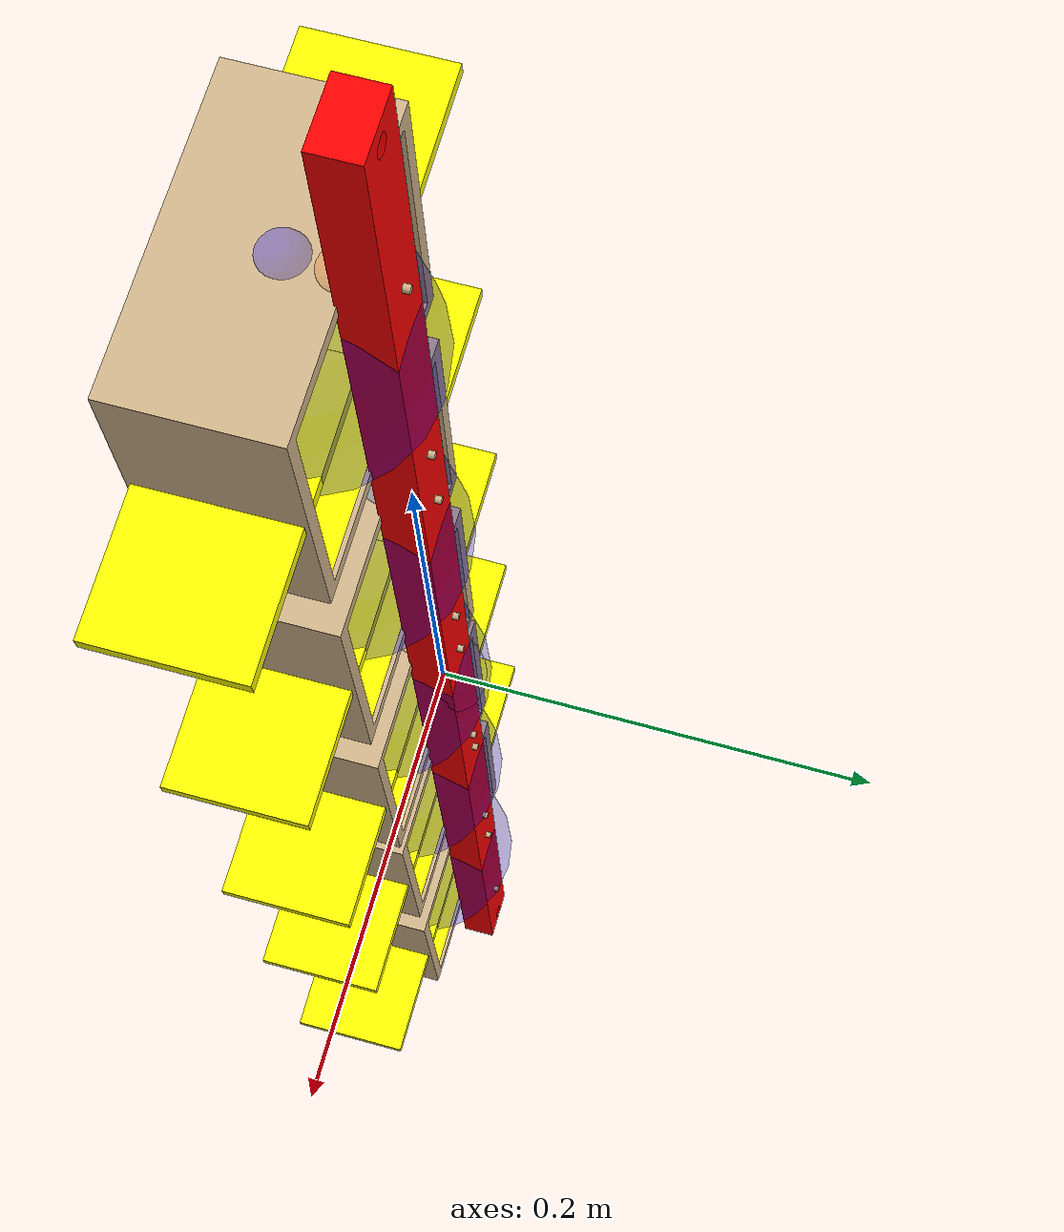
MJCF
<mujoco model="shelf_ivar_0678">
  <custom>
    <numeric data="-0.000755 0.072044 0.009075 0.5 -0.5 0.5 -0.5" name="0_part0_initpos" />
    <numeric data="-0.254231 -0.080677 0.06297 1.0 -0.0 0.0 0.0" name="1_part1_initpos" />
    <numeric data="-0.10745 0.201858 0.063073 -6e-06 0.0 -0.0 -1.0" name="2_part2_initpos" />
    <numeric data="0.045981 -0.080604 0.06297 1.0 -0.0 0.0 -6e-06" name="3_part3_initpos" />
    <numeric data="0.197653 0.207511 0.06297 1e-06 0.0 0.0 -1.0" name="4_part4_initpos" />
    <numeric data="0.348056 -0.070529 0.06297 1.0 -0.0 -0.0 7e-06" name="5_part5_initpos" />
  </custom>
  <asset>
    <mesh file="shelf_ivar_0678/box.stl" name="box_mesh" scale="0.0005 0.0005 0.0005" />
    <mesh file="shelf_ivar_0678/column.stl" name="column_mesh" scale="0.0005 0.0005 0.0005" />
    <texture file="../textures/light-wood.png" name="tex-light-wood" type="2d" />
    <material name="light-wood" reflectance="0.5" texrepeat="20 20" texture="tex-light-wood" texuniform="true" />
  </asset>
  <equality>
    <weld active="false" body1="0_part0" body2="1_part1" solimp="1 1 0.5" solref="0.01 0.3" />
    <weld active="false" body1="0_part0" body2="2_part2" solimp="1 1 0.5" solref="0.01 0.3" />
    <weld active="false" body1="0_part0" body2="3_part3" solimp="1 1 0.5" solref="0.01 0.3" />
    <weld active="false" body1="0_part0" body2="4_part4" solimp="1 1 0.5" solref="0.01 0.3" />
    <weld active="false" body1="0_part0" body2="5_part5" solimp="1 1 0.5" solref="0.01 0.3" />
  </equality>
  <worldbody>
    <body name="0_part0" pos="0 0 0" quat="1 0 0 0">
      <geom conaffinity="0" contype="0" density="1" mesh="column_mesh" name="0_part0_mesh" pos="0 0 0" rgba="0.82 0.71 0.55 1" type="mesh" />
      <geom density="100" name="noviz_collision_0_part0" pos="0 0 0" rgba="1 0 0 1" size="0.0135 0.009 0.45" solref="0.001 1" type="box" />
      <site name="0_part0_bottom_site" pos="0 0 -0.44" rgba="1 0 0 0.3" size="0.01" />
      <site name="0_part0_top_site" pos="0.0 0.0 0.44" rgba="1 0 0 0.3" size="0.01" />
      <site name="0_part0_horizontal_radius_site" pos="0 0 0" rgba="0 0 1 0.3" size="0.02" />
      <site name="col-box1,0,conn_site" pos="0 -0.01 -0.26" quat="0.707 0 0.707 0" rgba="0.9019 0.0980 0.2941 0.3" size="0.01" />
      <site name="col-box2,0,conn_site" pos="0 -0.01 -0.10" quat="0.707 0 0.707 0" rgba="0.2352 0.7058 0.2941 0.3" size="0.01" />
      <site name="col-box3,0,conn_site" pos="0 -0.01 0.04" quat="0.707 0 0.707 0" rgba="1.0 0.8823 0.0980 0.3" size="0.01" />
      <site name="col-box4,0,conn_site" pos="0 -0.01 0.20" quat="0.707 0 0.707 0" rgba="0.2627 0.3882 0.8470 0.3" size="0.01" />
      <site name="col-box5,0,conn_site" pos="0 -0.01 0.36" quat="0.707 0 0.707 0" rgba="0.9607 0.5098 0.1921 0.3" size="0.01" />
    </body>
    <body name="1_part1" pos="0 -0.03 -0.32" quat="1 0 0 0">
      <geom conaffinity="0" contype="0" density="1" material="light-wood" mesh="box_mesh" name="1_part1_mesh" pos="0 0 0" rgba="0.82 0.71 0.55 1" type="mesh" />
      <geom density="100" name="noviz_collision_1_part1_top" pos="0 -0.01 0.06" rgba="1 0 0 1" size="0.06 0.03 0.003" solref="0.001 1" type="box" />
      <geom density="100" name="noviz_collision_1_part1_bot" pos="0 -0.01 -0.06" rgba="1 1 0 1" size="0.06 0.03 0.003" solref="0.001 1" type="box" />
      <geom density="100" euler="0 1.56  0" name="noviz_collision_1_part1_side1" pos="-0.06 -0.01 0" rgba="1 1 0 1" size="0.06 0.03 0.003" solref="0.001 1" type="box" />
      <geom density="100" euler="0 1.56  0" name="noviz_collision_1_part1_side2" pos="0.06 -0.01 0" rgba="1 1 0 1" size="0.06 0.03 0.003" solref="0.001 1" type="box" />
      <site name="box1-col,0,conn_site" pos="0.0 0.025 0.06" quat="0.707 0 0.707 0" rgba="0.9019 0.0980 0.2941 0.3" size="0.01" />
      <site name="1_part1_bottom_site" pos="0 0 -0.06" rgba="0 0 1 0.3" size="0.01" />
      <site name="1_part1_top_site" pos="0.0 0.0 0.06" rgba="0 0 1 0.3" size="0.01" />
      <site name="1_part1_horizontal_radius_site" pos="0 0 0" rgba="0 0 1 0.3" size="0.05" />
    </body>
    <body name="2_part2" pos="0 -0.03 -0.16" quat="1 0 0 0">
      <geom conaffinity="0" contype="0" density="1" material="light-wood" mesh="box_mesh" name="2_part2_mesh" pos="0 0 0" rgba="0.82 0.71 0.55 1" type="mesh" />
      <geom density="100" name="noviz_collision_2_part2_top" pos="0 -0.01 0.06" rgba="1 0 0 1" size="0.06 0.03 0.003" solref="0.001 1" type="box" />
      <geom density="100" name="noviz_collision_2_part2_bot" pos="0 -0.01 -0.06" rgba="1 1 0 1" size="0.06 0.03 0.003" solref="0.001 1" type="box" />
      <geom density="100" euler="0 1.56  0" name="noviz_collision_2_part2_side1" pos="-0.06 -0.01 0" rgba="1 1 0 1" size="0.06 0.03 0.003" solref="0.001 1" type="box" />
      <geom density="100" euler="0 1.56  0" name="noviz_collision_2_part2_side2" pos="0.06 -0.01 0" rgba="1 1 0 1" size="0.06 0.03 0.003" solref="0.001 1" type="box" />
      <site name="box2-col,0,conn_site" pos="0.0 0.025 0.06" quat="0.707 0 0.707 0" rgba="0.2352 0.7058 0.2941 0.3" size="0.01" />
      <site name="2_part2_bottom_site" pos="0 0 -0.06" rgba="0 0 1 0.3" size="0.01" />
      <site name="2_part2_top_site" pos="0.0 0.0 0.06" rgba="0 0 1 0.3" size="0.01" />
      <site name="2_part2_horizontal_radius_site" pos="0 0 0" rgba="0 0 1 0.3" size="0.05" />
    </body>
    <body name="3_part3" pos="0 -0.03 -0.02" quat="1 0 0 0">
      <geom conaffinity="0" contype="0" density="1" material="light-wood" mesh="box_mesh" name="3_part3_mesh" pos="0 0 0" rgba="0.82 0.71 0.55 1" type="mesh" />
      <geom density="100" name="noviz_collision_3_part3_top" pos="0 -0.01 0.06" rgba="1 0 0 1" size="0.06 0.03 0.003" solref="0.001 1" type="box" />
      <geom density="100" name="noviz_collision_3_part3_bot" pos="0 -0.01 -0.06" rgba="1 1 0 1" size="0.06 0.03 0.003" solref="0.001 1" type="box" />
      <geom density="100" euler="0 1.56  0" name="noviz_collision_3_part3_side1" pos="-0.06 -0.01 0" rgba="1 1 0 1" size="0.06 0.03 0.003" solref="0.001 1" type="box" />
      <geom density="100" euler="0 1.56  0" name="noviz_collision_3_part3_side2" pos="0.06 -0.01 0" rgba="1 1 0 1" size="0.06 0.03 0.003" solref="0.001 1" type="box" />
      <site name="box3-col,0,conn_site" pos="0.0 0.025 0.06" quat="0.707 0 0.707 0" rgba="1.0 0.8823 0.0980 0.3" size="0.01" />
      <site name="3_part3_bottom_site" pos="0 0 -0.06" rgba="0 0 1 0.3" size="0.01" />
      <site name="3_part3_top_site" pos="0.0 0.0 0.06" rgba="0 0 1 0.3" size="0.01" />
      <site name="3_part3_horizontal_radius_site" pos="0 0 0" rgba="0 0 1 0.3" size="0.05" />
    </body>
    <body name="4_part4" pos="0 -0.03 0.14" quat="1 0 0 0">
      <geom conaffinity="0" contype="0" density="1" material="light-wood" mesh="box_mesh" name="4_part4_mesh" pos="0 0 0" rgba="0.82 0.71 0.55 1" type="mesh" />
      <geom density="100" name="noviz_collision_4_part4_top" pos="0 -0.01 0.06" rgba="1 0 0 1" size="0.06 0.03 0.003" solref="0.001 1" type="box" />
      <geom density="100" name="noviz_collision_4_part4_bot" pos="0 -0.01 -0.06" rgba="1 1 0 1" size="0.06 0.03 0.003" solref="0.001 1" type="box" />
      <geom density="100" euler="0 1.56  0" name="noviz_collision_4_part4_side1" pos="-0.06 -0.01 0" rgba="1 1 0 1" size="0.06 0.03 0.003" solref="0.001 1" type="box" />
      <geom density="100" euler="0 1.56  0" name="noviz_collision_4_part4_side2" pos="0.06 -0.01 0" rgba="1 1 0 1" size="0.06 0.03 0.003" solref="0.001 1" type="box" />
      <site name="box4-col,0,conn_site" pos="0.0 0.025 0.06" quat="0.707 0 0.707 0" rgba="0.2627 0.3882 0.8470 0.3" size="0.01" />
      <site name="4_part4_bottom_site" pos="0 0 -0.06" rgba="0 0 1 0.3" size="0.01" />
      <site name="4_part4_top_site" pos="0.0 0.0 0.06" rgba="0 0 1 0.3" size="0.01" />
      <site name="4_part4_horizontal_radius_site" pos="0 0 0" rgba="0 0 1 0.3" size="0.05" />
    </body>
    <body name="5_part5" pos="0 -0.03 0.30" quat="1 0 0 0">
      <geom conaffinity="0" contype="0" density="1" material="light-wood" mesh="box_mesh" name="5_part5_mesh" pos="0 0 0" rgba="0.82 0.71 0.55 1" type="mesh" />
      <geom density="100" name="noviz_collision_5_part5_top" pos="0 -0.01 0.06" rgba="1 0 0 1" size="0.06 0.03 0.003" solref="0.001 1" type="box" />
      <geom density="100" name="noviz_collision_5_part5_bot" pos="0 -0.01 -0.06" rgba="1 1 0 1" size="0.06 0.03 0.003" solref="0.001 1" type="box" />
      <geom density="100" euler="0 1.56  0" name="noviz_collision_5_part5_side1" pos="-0.06 -0.01 0" rgba="1 1 0 1" size="0.06 0.03 0.003" solref="0.001 1" type="box" />
      <geom density="100" euler="0 1.56  0" name="noviz_collision_5_part5_side2" pos="0.06 -0.01 0" rgba="1 1 0 1" size="0.06 0.03 0.003" solref="0.001 1" type="box" />
      <site name="box5-col,0,conn_site" pos="0.0 0.025 0.06" quat="0.707 0 0.707 0" rgba="0.9607 0.5098 0.1921 0.3" size="0.01" />
      <site name="5_part5_bottom_site" pos="0 0 -0.06" rgba="0 0 1 0.3" size="0.01" />
      <site name="5_part5_top_site" pos="0.0 0.0 0.06" rgba="0 0 1 0.3" size="0.01" />
      <site name="5_part5_horizontal_radius_site" pos="0 0 0" rgba="0 0 1 0.3" size="0.05" />
    </body>
  </worldbody>
  <actuator />
  <sensor />
  <contact />
  <default />
</mujoco>
